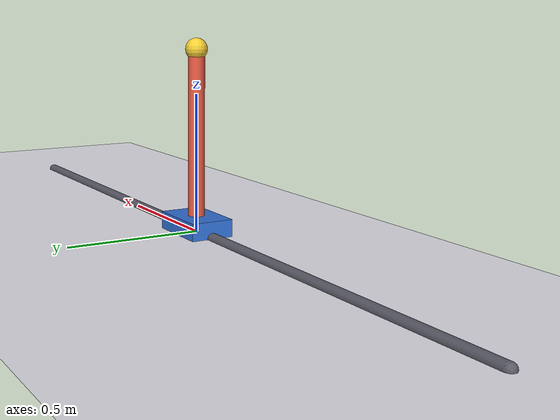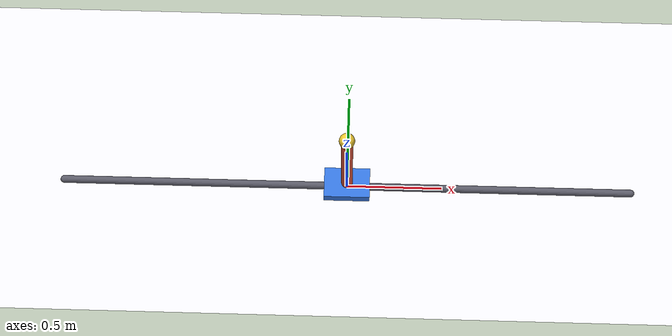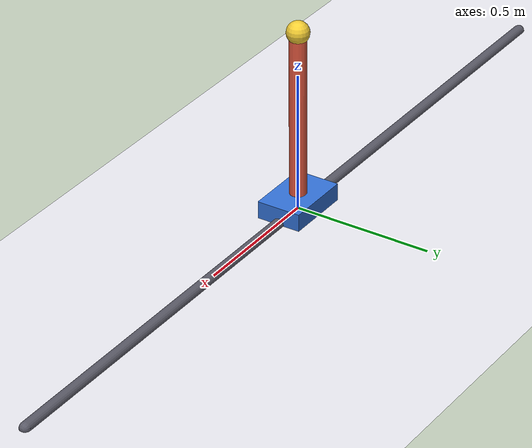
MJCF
<!-- Classic CartPole / inverted pendulum for MuJoCo. -->
<mujoco model="cartpole">
  <compiler angle="radian" coordinate="local" inertiafromgeom="true"/>
  <option timestep="0.02" gravity="0 0 -9.81" integrator="RK4"/>

  <default>
    <joint damping="0.05" armature="0.01"/>
    <geom friction="0.5 0.01 0.001" rgba="0.75 0.75 0.8 1"/>
  </default>

  <worldbody>
    <light pos="0 0 3" dir="0 0 -1" diffuse="0.8 0.8 0.8"/>
    <geom name="floor" type="plane" size="3 1 0.05" rgba="0.92 0.92 0.95 1" contype="0" conaffinity="0"/>
    <geom name="rail" type="capsule" fromto="-1.5 0 0 1.5 0 0" size="0.02" rgba="0.35 0.35 0.4 1" contype="0" conaffinity="0"/>

    <body name="cart" pos="0 0 0">
      <joint name="slider" type="slide" axis="1 0 0" limited="true" range="-1.5 1.5"/>
      <geom name="cart" type="box" size="0.12 0.08 0.06" mass="1.0" rgba="0.2 0.45 0.85 1"/>
      <body name="pole" pos="0 0 0.06">
        <joint name="hinge" type="hinge" axis="0 1 0" limited="false"/>
        <geom name="pole" type="capsule" fromto="0 0 0 0 0 0.6" size="0.03" mass="0.1" rgba="0.9 0.35 0.25 1"/>
        <geom name="tip" type="sphere" pos="0 0 0.6" size="0.04" mass="0.01" rgba="0.95 0.8 0.2 1"/>
      </body>
    </body>
  </worldbody>

  <actuator>
    <!-- Discrete left/right maps to +/- ctrlrange force. -->
    <motor name="slide" joint="slider" gear="100" ctrllimited="true" ctrlrange="-1 1"/>
  </actuator>

  <sensor>
    <jointpos name="cart_pos" joint="slider"/>
    <jointvel name="cart_vel" joint="slider"/>
    <jointpos name="pole_angle" joint="hinge"/>
    <jointvel name="pole_angvel" joint="hinge"/>
  </sensor>
</mujoco>
